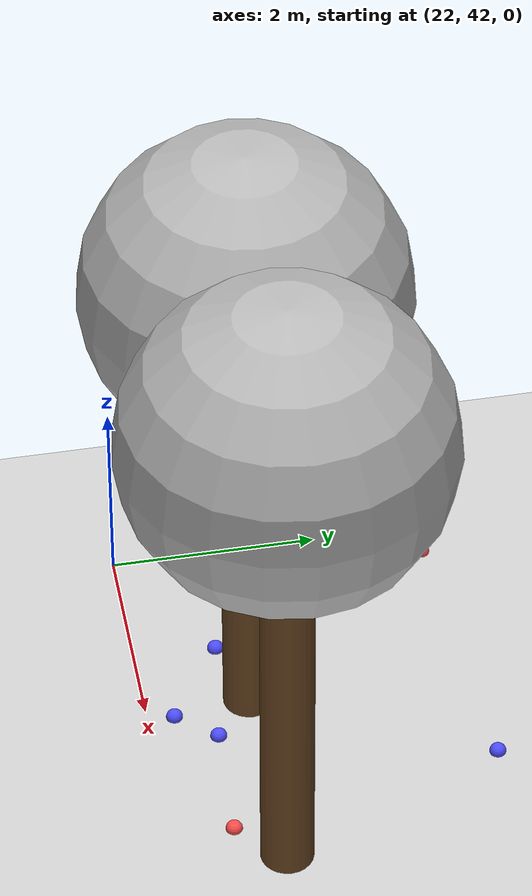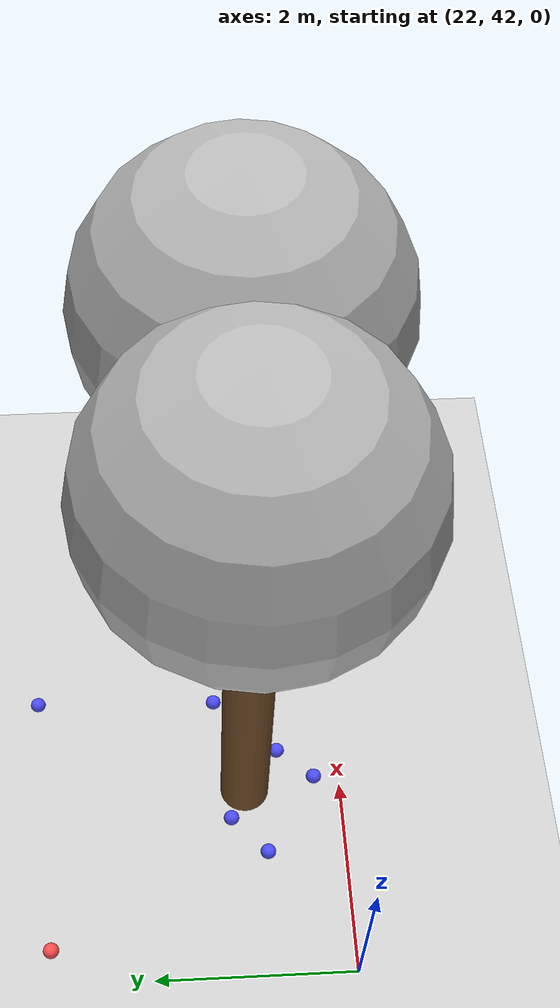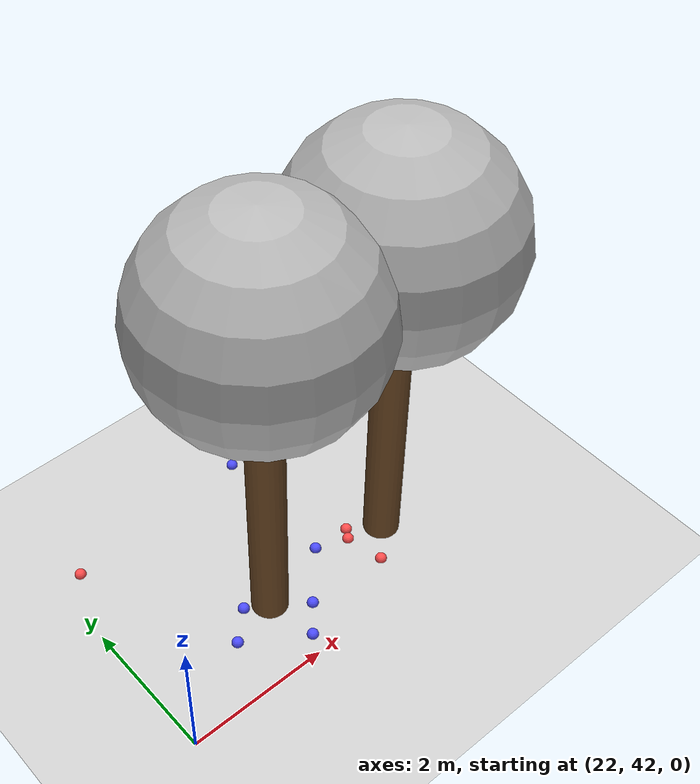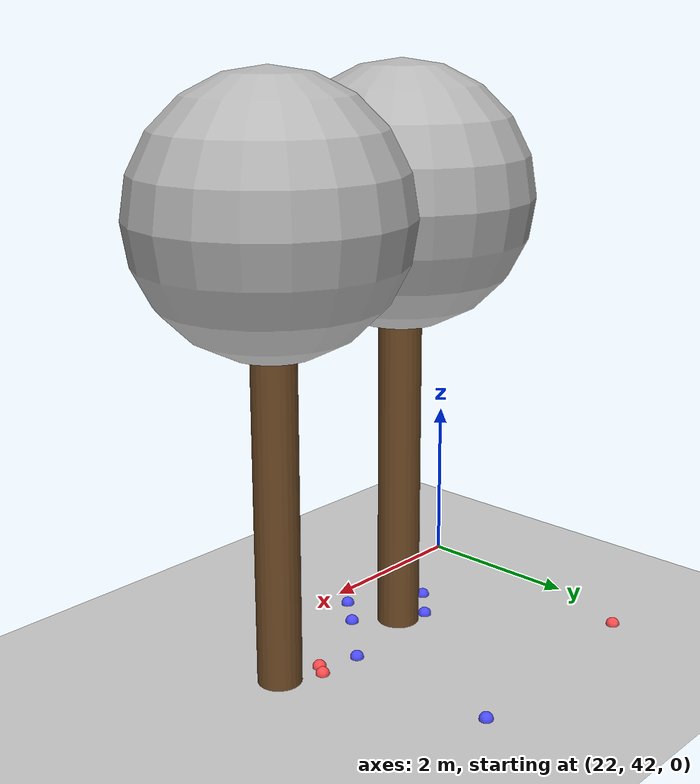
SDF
<sdf version="1.7">
 <world name="default">
  <model name="ground_plane">
   <static>1</static>
   <link name="link">
    <collision name="collision">
     <geometry><plane><normal>0 0 1</normal><size>100 100</size></plane></geometry>
     <surface>
      <contact><collide_bitmask>65535</collide_bitmask></contact>
      <friction><ode><mu>100</mu><mu2>50</mu2></ode></friction>
     </surface>
    </collision>
    <visual name="visual">
     <cast_shadows>0</cast_shadows>
     <geometry><plane><normal>0 0 1</normal><size>100 100</size></plane></geometry>
     <material>
      <script><uri>file://media/materials/scripts/gazebo.material</uri><name>Gazebo/Grey</name></script>
     </material>
    </visual>
   </link>
  </model>
  <model name="tree_simple_11">
   <static>1</static>
   <link name="link">
    <pose>0 0 0.1 0 -0 0</pose>
    <inertial>
     <mass>666</mass>
     <inertia>
      <ixx>0.0861167</ixx>
      <ixy>0</ixy>
      <ixz>0</ixz>
      <iyy>0.0861167</iyy>
      <iyz>0</iyz>
      <izz>0.0861167</izz>
     </inertia>
    </inertial>
    <collision name="collision_trunk">
     <pose>0 0 2 0 -0 0</pose>
     <geometry><cylinder><radius>0.25</radius><length>4</length></cylinder></geometry>
     <surface>
      <contact>
       <poissons_ratio>0.347</poissons_ratio>
       <elastic_modulus>8.8e+09</elastic_modulus>
       <ode><kp>100000</kp><kd>100</kd><max_vel>100</max_vel><min_depth>0.001</min_depth></ode>
      </contact>
      <friction>
       <torsional>
        <coefficient>1</coefficient>
        <use_patch_radius>0</use_patch_radius>
        <surface_radius>0.01</surface_radius>
       </torsional>
      </friction>
     </surface>
    </collision>
    <collision name="collision_treetop">
     <pose>0 0 5.2 0 -0 0</pose>
     <geometry><sphere><radius>1.5</radius></sphere></geometry>
     <surface>
      <contact>
       <poissons_ratio>0.347</poissons_ratio>
       <elastic_modulus>8.8e+09</elastic_modulus>
       <ode><kp>100000</kp><kd>100</kd><max_vel>100</max_vel><min_depth>0.001</min_depth></ode>
      </contact>
      <friction>
       <torsional>
        <coefficient>1</coefficient>
        <use_patch_radius>0</use_patch_radius>
        <surface_radius>0.01</surface_radius>
       </torsional>
      </friction>
     </surface>
    </collision>
    <visual name="trunk">
     <pose>0 0 2 0 -0 0</pose>
     <geometry><cylinder><radius>0.25</radius><length>4</length></cylinder></geometry>
     <material>
      <script>
       <uri>model://tree_simple/scripts</uri>
       <uri>model://tree_simple/materials/textures</uri>
       <name>TreeSimple/Trunk</name>
      </script>
     </material>
    </visual>
    <visual name="treetop">
     <pose>0 0 5.2 0 -0 0</pose>
     <geometry><sphere><radius>1.5</radius></sphere></geometry>
     <material>
      <script>
       <uri>model://tree_simple/scripts</uri>
       <uri>model://tree_simple/materials/textures</uri>
       <name>TreeSimple/Treetop</name>
      </script>
     </material>
    </visual>
   </link>
   <pose>24 43 -0.1 0 -0 0</pose>
  </model>
  <model name="tree_simple_12">
   <static>1</static>
   <link name="link">
    <pose>0 0 0.1 0 -0 0</pose>
    <inertial>
     <mass>666</mass>
     <inertia>
      <ixx>0.0861167</ixx>
      <ixy>0</ixy>
      <ixz>0</ixz>
      <iyy>0.0861167</iyy>
      <iyz>0</iyz>
      <izz>0.0861167</izz>
     </inertia>
    </inertial>
    <collision name="collision_trunk">
     <pose>0 0 2 0 -0 0</pose>
     <geometry><cylinder><radius>0.25</radius><length>4</length></cylinder></geometry>
     <surface>
      <contact>
       <poissons_ratio>0.347</poissons_ratio>
       <elastic_modulus>8.8e+09</elastic_modulus>
       <ode><kp>100000</kp><kd>100</kd><max_vel>100</max_vel><min_depth>0.001</min_depth></ode>
      </contact>
      <friction>
       <torsional>
        <coefficient>1</coefficient>
        <use_patch_radius>0</use_patch_radius>
        <surface_radius>0.01</surface_radius>
       </torsional>
      </friction>
     </surface>
    </collision>
    <collision name="collision_treetop">
     <pose>0 0 5.2 0 -0 0</pose>
     <geometry><sphere><radius>1.5</radius></sphere></geometry>
     <surface>
      <contact>
       <poissons_ratio>0.347</poissons_ratio>
       <elastic_modulus>8.8e+09</elastic_modulus>
       <ode><kp>100000</kp><kd>100</kd><max_vel>100</max_vel><min_depth>0.001</min_depth></ode>
      </contact>
      <friction>
       <torsional>
        <coefficient>1</coefficient>
        <use_patch_radius>0</use_patch_radius>
        <surface_radius>0.01</surface_radius>
       </torsional>
      </friction>
     </surface>
    </collision>
    <visual name="trunk">
     <pose>0 0 2 0 -0 0</pose>
     <geometry><cylinder><radius>0.25</radius><length>4</length></cylinder></geometry>
     <material>
      <script>
       <uri>model://tree_simple/scripts</uri>
       <uri>model://tree_simple/materials/textures</uri>
       <name>TreeSimple/Trunk</name>
      </script>
     </material>
    </visual>
    <visual name="treetop">
     <pose>0 0 5.2 0 -0 0</pose>
     <geometry><sphere><radius>1.5</radius></sphere></geometry>
     <material>
      <script>
       <uri>model://tree_simple/scripts</uri>
       <uri>model://tree_simple/materials/textures</uri>
       <name>TreeSimple/Treetop</name>
      </script>
     </material>
    </visual>
   </link>
   <pose>26 43 -0.1 0 -0 0</pose>
  </model>
  <model name="seed_red_29">
   <link name="link">
    <inertial>
     <mass>1</mass>
     <inertia><ixx>0.1</ixx><ixy>0</ixy><ixz>0</ixz><iyy>0.1</iyy><iyz>0</iyz><izz>0.1</izz></inertia>
    </inertial>
    <visual name="visual">
     <geometry><sphere><radius>0.08</radius></sphere></geometry>
     <material>
      <script><name>Gazebo/Grey</name><uri>file://media/materials/scripts/gazebo.material</uri></script>
      <shader type="pixel"><normal_map>__default__</normal_map></shader>
      <ambient>1 0.3 0.3 1</ambient>
      <diffuse>0.7 0.7 0.7 1</diffuse>
      <specular>0.01 0.01 0.01 1</specular>
      <emissive>0 0 0 1</emissive>
     </material>
    </visual>
    <collision name="collision">
     <geometry><sphere><radius>0.0005</radius></sphere></geometry>
     <surface>
      <friction>
       <ode><mu>1</mu><mu2>1</mu2><fdir1>0 0 0</fdir1><slip1>0</slip1><slip2>0</slip2></ode>
       <torsional>
        <coefficient>1</coefficient>
        <patch_radius>0</patch_radius>
        <surface_radius>0</surface_radius>
        <use_patch_radius>1</use_patch_radius>
        <ode><slip>0</slip></ode>
       </torsional>
      </friction>
      <bounce><restitution_coefficient>0</restitution_coefficient><threshold>1e+06</threshold></bounce>
      <contact>
       <collide_without_contact>0</collide_without_contact>
       <collide_without_contact_bitmask>1</collide_without_contact_bitmask>
       <collide_bitmask>1</collide_bitmask>
       <ode>
        <soft_cfm>0</soft_cfm>
        <soft_erp>0.2</soft_erp>
        <kp>1e+13</kp>
        <kd>1</kd>
        <max_vel>0.01</max_vel>
        <min_depth>0</min_depth>
       </ode>
       <bullet>
        <split_impulse>1</split_impulse>
        <split_impulse_penetration_threshold>-0.01</split_impulse_penetration_threshold>
        <soft_cfm>0</soft_cfm>
        <soft_erp>0.2</soft_erp>
        <kp>1e+13</kp>
        <kd>1</kd>
       </bullet>
      </contact>
     </surface>
    </collision>
   </link>
   <static>0</static>
   <pose>22.3503 45.0136 0.0005 0 -0 0</pose>
  </model>
  <model name="seed_blue_13">
   <link name="link">
    <inertial>
     <mass>1</mass>
     <inertia><ixx>0.1</ixx><ixy>0</ixy><ixz>0</ixz><iyy>0.1</iyy><iyz>0</iyz><izz>0.1</izz></inertia>
    </inertial>
    <visual name="visual">
     <geometry><sphere><radius>0.08</radius></sphere></geometry>
     <material>
      <script><name>Gazebo/Grey</name><uri>file://media/materials/scripts/gazebo.material</uri></script>
      <shader type="pixel"><normal_map>__default__</normal_map></shader>
      <ambient>0.3 0.3 1 1</ambient>
      <diffuse>0.7 0.7 0.7 1</diffuse>
      <specular>0.01 0.01 0.01 1</specular>
      <emissive>0 0 0 1</emissive>
     </material>
    </visual>
    <collision name="collision">
     <geometry><sphere><radius>0.0005</radius></sphere></geometry>
     <surface>
      <friction>
       <ode><mu>1</mu><mu2>1</mu2><fdir1>0 0 0</fdir1><slip1>0</slip1><slip2>0</slip2></ode>
       <torsional>
        <coefficient>1</coefficient>
        <patch_radius>0</patch_radius>
        <surface_radius>0</surface_radius>
        <use_patch_radius>1</use_patch_radius>
        <ode><slip>0</slip></ode>
       </torsional>
      </friction>
      <bounce><restitution_coefficient>0</restitution_coefficient><threshold>1e+06</threshold></bounce>
      <contact>
       <collide_without_contact>0</collide_without_contact>
       <collide_without_contact_bitmask>1</collide_without_contact_bitmask>
       <collide_bitmask>1</collide_bitmask>
       <ode>
        <soft_cfm>0</soft_cfm>
        <soft_erp>0.2</soft_erp>
        <kp>1e+13</kp>
        <kd>1</kd>
        <max_vel>0.01</max_vel>
        <min_depth>0</min_depth>
       </ode>
       <bullet>
        <split_impulse>1</split_impulse>
        <split_impulse_penetration_threshold>-0.01</split_impulse_penetration_threshold>
        <soft_cfm>0</soft_cfm>
        <soft_erp>0.2</soft_erp>
        <kp>1e+13</kp>
        <kd>1</kd>
       </bullet>
      </contact>
     </surface>
    </collision>
   </link>
   <static>0</static>
   <pose>25.0944 45.1856 0.0005 0 -0 0</pose>
  </model>
  <model name="seed_blue_30">
   <link name="link">
    <inertial>
     <mass>1</mass>
     <inertia><ixx>0.1</ixx><ixy>0</ixy><ixz>0</ixz><iyy>0.1</iyy><iyz>0</iyz><izz>0.1</izz></inertia>
    </inertial>
    <visual name="visual">
     <geometry><sphere><radius>0.08</radius></sphere></geometry>
     <material>
      <script><name>Gazebo/Grey</name><uri>file://media/materials/scripts/gazebo.material</uri></script>
      <shader type="pixel"><normal_map>__default__</normal_map></shader>
      <ambient>0.3 0.3 1 1</ambient>
      <diffuse>0.7 0.7 0.7 1</diffuse>
      <specular>0.01 0.01 0.01 1</specular>
      <emissive>0 0 0 1</emissive>
     </material>
    </visual>
    <collision name="collision">
     <geometry><sphere><radius>0.0005</radius></sphere></geometry>
     <surface>
      <friction>
       <ode><mu>1</mu><mu2>1</mu2><fdir1>0 0 0</fdir1><slip1>0</slip1><slip2>0</slip2></ode>
       <torsional>
        <coefficient>1</coefficient>
        <patch_radius>0</patch_radius>
        <surface_radius>0</surface_radius>
        <use_patch_radius>1</use_patch_radius>
        <ode><slip>0</slip></ode>
       </torsional>
      </friction>
      <bounce><restitution_coefficient>0</restitution_coefficient><threshold>1e+06</threshold></bounce>
      <contact>
       <collide_without_contact>0</collide_without_contact>
       <collide_without_contact_bitmask>1</collide_without_contact_bitmask>
       <collide_bitmask>1</collide_bitmask>
       <ode>
        <soft_cfm>0</soft_cfm>
        <soft_erp>0.2</soft_erp>
        <kp>1e+13</kp>
        <kd>1</kd>
        <max_vel>0.01</max_vel>
        <min_depth>0</min_depth>
       </ode>
       <bullet>
        <split_impulse>1</split_impulse>
        <split_impulse_penetration_threshold>-0.01</split_impulse_penetration_threshold>
        <soft_cfm>0</soft_cfm>
        <soft_erp>0.2</soft_erp>
        <kp>1e+13</kp>
        <kd>1</kd>
       </bullet>
      </contact>
     </surface>
    </collision>
   </link>
   <static>0</static>
   <pose>23.2898 42.796 0.0005 0 -0 0</pose>
  </model>
  <model name="seed_blue_31">
   <link name="link">
    <inertial>
     <mass>1</mass>
     <inertia><ixx>0.1</ixx><ixy>0</ixy><ixz>0</ixz><iyy>0.1</iyy><iyz>0</iyz><izz>0.1</izz></inertia>
    </inertial>
    <visual name="visual">
     <geometry><sphere><radius>0.08</radius></sphere></geometry>
     <material>
      <script><name>Gazebo/Grey</name><uri>file://media/materials/scripts/gazebo.material</uri></script>
      <shader type="pixel"><normal_map>__default__</normal_map></shader>
      <ambient>0.3 0.3 1 1</ambient>
      <diffuse>0.7 0.7 0.7 1</diffuse>
      <specular>0.01 0.01 0.01 1</specular>
      <emissive>0 0 0 1</emissive>
     </material>
    </visual>
    <collision name="collision">
     <geometry><sphere><radius>0.0005</radius></sphere></geometry>
     <surface>
      <friction>
       <ode><mu>1</mu><mu2>1</mu2><fdir1>0 0 0</fdir1><slip1>0</slip1><slip2>0</slip2></ode>
       <torsional>
        <coefficient>1</coefficient>
        <patch_radius>0</patch_radius>
        <surface_radius>0</surface_radius>
        <use_patch_radius>1</use_patch_radius>
        <ode><slip>0</slip></ode>
       </torsional>
      </friction>
      <bounce><restitution_coefficient>0</restitution_coefficient><threshold>1e+06</threshold></bounce>
      <contact>
       <collide_without_contact>0</collide_without_contact>
       <collide_without_contact_bitmask>1</collide_without_contact_bitmask>
       <collide_bitmask>1</collide_bitmask>
       <ode>
        <soft_cfm>0</soft_cfm>
        <soft_erp>0.2</soft_erp>
        <kp>1e+13</kp>
        <kd>1</kd>
        <max_vel>0.01</max_vel>
        <min_depth>0</min_depth>
       </ode>
       <bullet>
        <split_impulse>1</split_impulse>
        <split_impulse_penetration_threshold>-0.01</split_impulse_penetration_threshold>
        <soft_cfm>0</soft_cfm>
        <soft_erp>0.2</soft_erp>
        <kp>1e+13</kp>
        <kd>1</kd>
       </bullet>
      </contact>
     </surface>
    </collision>
   </link>
   <static>0</static>
   <pose>24.4297 42.6311 0.0005 0 -0 0</pose>
  </model>
  <model name="seed_blue_32">
   <link name="link">
    <inertial>
     <mass>1</mass>
     <inertia><ixx>0.1</ixx><ixy>0</ixy><ixz>0</ixz><iyy>0.1</iyy><iyz>0</iyz><izz>0.1</izz></inertia>
    </inertial>
    <visual name="visual">
     <geometry><sphere><radius>0.08</radius></sphere></geometry>
     <material>
      <script><name>Gazebo/Grey</name><uri>file://media/materials/scripts/gazebo.material</uri></script>
      <shader type="pixel"><normal_map>__default__</normal_map></shader>
      <ambient>0.3 0.3 1 1</ambient>
      <diffuse>0.7 0.7 0.7 1</diffuse>
      <specular>0.01 0.01 0.01 1</specular>
      <emissive>0 0 0 1</emissive>
     </material>
    </visual>
    <collision name="collision">
     <geometry><sphere><radius>0.0005</radius></sphere></geometry>
     <surface>
      <friction>
       <ode><mu>1</mu><mu2>1</mu2><fdir1>0 0 0</fdir1><slip1>0</slip1><slip2>0</slip2></ode>
       <torsional>
        <coefficient>1</coefficient>
        <patch_radius>0</patch_radius>
        <surface_radius>0</surface_radius>
        <use_patch_radius>1</use_patch_radius>
        <ode><slip>0</slip></ode>
       </torsional>
      </friction>
      <bounce><restitution_coefficient>0</restitution_coefficient><threshold>1e+06</threshold></bounce>
      <contact>
       <collide_without_contact>0</collide_without_contact>
       <collide_without_contact_bitmask>1</collide_without_contact_bitmask>
       <collide_bitmask>1</collide_bitmask>
       <ode>
        <soft_cfm>0</soft_cfm>
        <soft_erp>0.2</soft_erp>
        <kp>1e+13</kp>
        <kd>1</kd>
        <max_vel>0.01</max_vel>
        <min_depth>0</min_depth>
       </ode>
       <bullet>
        <split_impulse>1</split_impulse>
        <split_impulse_penetration_threshold>-0.01</split_impulse_penetration_threshold>
        <soft_cfm>0</soft_cfm>
        <soft_erp>0.2</soft_erp>
        <kp>1e+13</kp>
        <kd>1</kd>
       </bullet>
      </contact>
     </surface>
    </collision>
   </link>
   <static>0</static>
   <pose>25.0393 43.2781 0.0005 0 -0 0</pose>
  </model>
  <model name="seed_blue_33">
   <link name="link">
    <inertial>
     <mass>1</mass>
     <inertia><ixx>0.1</ixx><ixy>0</ixy><ixz>0</ixz><iyy>0.1</iyy><iyz>0</iyz><izz>0.1</izz></inertia>
    </inertial>
    <visual name="visual">
     <geometry><sphere><radius>0.08</radius></sphere></geometry>
     <material>
      <script><name>Gazebo/Grey</name><uri>file://media/materials/scripts/gazebo.material</uri></script>
      <shader type="pixel"><normal_map>__default__</normal_map></shader>
      <ambient>0.3 0.3 1 1</ambient>
      <diffuse>0.7 0.7 0.7 1</diffuse>
      <specular>0.01 0.01 0.01 1</specular>
      <emissive>0 0 0 1</emissive>
     </material>
    </visual>
    <collision name="collision">
     <geometry><sphere><radius>0.0005</radius></sphere></geometry>
     <surface>
      <friction>
       <ode><mu>1</mu><mu2>1</mu2><fdir1>0 0 0</fdir1><slip1>0</slip1><slip2>0</slip2></ode>
       <torsional>
        <coefficient>1</coefficient>
        <patch_radius>0</patch_radius>
        <surface_radius>0</surface_radius>
        <use_patch_radius>1</use_patch_radius>
        <ode><slip>0</slip></ode>
       </torsional>
      </friction>
      <bounce><restitution_coefficient>0</restitution_coefficient><threshold>1e+06</threshold></bounce>
      <contact>
       <collide_without_contact>0</collide_without_contact>
       <collide_without_contact_bitmask>1</collide_without_contact_bitmask>
       <collide_bitmask>1</collide_bitmask>
       <ode>
        <soft_cfm>0</soft_cfm>
        <soft_erp>0.2</soft_erp>
        <kp>1e+13</kp>
        <kd>1</kd>
        <max_vel>0.01</max_vel>
        <min_depth>0</min_depth>
       </ode>
       <bullet>
        <split_impulse>1</split_impulse>
        <split_impulse_penetration_threshold>-0.01</split_impulse_penetration_threshold>
        <soft_cfm>0</soft_cfm>
        <soft_erp>0.2</soft_erp>
        <kp>1e+13</kp>
        <kd>1</kd>
       </bullet>
      </contact>
     </surface>
    </collision>
   </link>
   <static>0</static>
   <pose>24.111 42.2599 0.0005 0 -0 0</pose>
  </model>
  <model name="seed_blue_34">
   <link name="link">
    <inertial>
     <mass>1</mass>
     <inertia><ixx>0.1</ixx><ixy>0</ixy><ixz>0</ixz><iyy>0.1</iyy><iyz>0</iyz><izz>0.1</izz></inertia>
    </inertial>
    <visual name="visual">
     <geometry><sphere><radius>0.08</radius></sphere></geometry>
     <material>
      <script><name>Gazebo/Grey</name><uri>file://media/materials/scripts/gazebo.material</uri></script>
      <shader type="pixel"><normal_map>__default__</normal_map></shader>
      <ambient>0.3 0.3 1 1</ambient>
      <diffuse>0.7 0.7 0.7 1</diffuse>
      <specular>0.01 0.01 0.01 1</specular>
      <emissive>0 0 0 1</emissive>
     </material>
    </visual>
    <collision name="collision">
     <geometry><sphere><radius>0.0005</radius></sphere></geometry>
     <surface>
      <friction>
       <ode><mu>1</mu><mu2>1</mu2><fdir1>0 0 0</fdir1><slip1>0</slip1><slip2>0</slip2></ode>
       <torsional>
        <coefficient>1</coefficient>
        <patch_radius>0</patch_radius>
        <surface_radius>0</surface_radius>
        <use_patch_radius>1</use_patch_radius>
        <ode><slip>0</slip></ode>
       </torsional>
      </friction>
      <bounce><restitution_coefficient>0</restitution_coefficient><threshold>1e+06</threshold></bounce>
      <contact>
       <collide_without_contact>0</collide_without_contact>
       <collide_without_contact_bitmask>1</collide_without_contact_bitmask>
       <collide_bitmask>1</collide_bitmask>
       <ode>
        <soft_cfm>0</soft_cfm>
        <soft_erp>0.2</soft_erp>
        <kp>1e+13</kp>
        <kd>1</kd>
        <max_vel>0.01</max_vel>
        <min_depth>0</min_depth>
       </ode>
       <bullet>
        <split_impulse>1</split_impulse>
        <split_impulse_penetration_threshold>-0.01</split_impulse_penetration_threshold>
        <soft_cfm>0</soft_cfm>
        <soft_erp>0.2</soft_erp>
        <kp>1e+13</kp>
        <kd>1</kd>
       </bullet>
      </contact>
     </surface>
    </collision>
   </link>
   <static>0</static>
   <pose>23.6772 43.1529 0.0005 0 -0 0</pose>
  </model>
  <model name="seed_red_48">
   <link name="link">
    <inertial>
     <mass>1</mass>
     <inertia><ixx>0.1</ixx><ixy>0</ixy><ixz>0</ixz><iyy>0.1</iyy><iyz>0</iyz><izz>0.1</izz></inertia>
    </inertial>
    <visual name="visual">
     <geometry><sphere><radius>0.08</radius></sphere></geometry>
     <material>
      <script><name>Gazebo/Grey</name><uri>file://media/materials/scripts/gazebo.material</uri></script>
      <shader type="pixel"><normal_map>__default__</normal_map></shader>
      <ambient>1 0.3 0.3 1</ambient>
      <diffuse>0.7 0.7 0.7 1</diffuse>
      <specular>0.01 0.01 0.01 1</specular>
      <emissive>0 0 0 1</emissive>
     </material>
    </visual>
    <collision name="collision">
     <geometry><sphere><radius>0.0005</radius></sphere></geometry>
     <surface>
      <friction>
       <ode><mu>1</mu><mu2>1</mu2><fdir1>0 0 0</fdir1><slip1>0</slip1><slip2>0</slip2></ode>
       <torsional>
        <coefficient>1</coefficient>
        <patch_radius>0</patch_radius>
        <surface_radius>0</surface_radius>
        <use_patch_radius>1</use_patch_radius>
        <ode><slip>0</slip></ode>
       </torsional>
      </friction>
      <bounce><restitution_coefficient>0</restitution_coefficient><threshold>1e+06</threshold></bounce>
      <contact>
       <collide_without_contact>0</collide_without_contact>
       <collide_without_contact_bitmask>1</collide_without_contact_bitmask>
       <collide_bitmask>1</collide_bitmask>
       <ode>
        <soft_cfm>0</soft_cfm>
        <soft_erp>0.2</soft_erp>
        <kp>1e+13</kp>
        <kd>1</kd>
        <max_vel>0.01</max_vel>
        <min_depth>0</min_depth>
       </ode>
       <bullet>
        <split_impulse>1</split_impulse>
        <split_impulse_penetration_threshold>-0.01</split_impulse_penetration_threshold>
        <soft_cfm>0</soft_cfm>
        <soft_erp>0.2</soft_erp>
        <kp>1e+13</kp>
        <kd>1</kd>
       </bullet>
      </contact>
     </surface>
    </collision>
   </link>
   <static>0</static>
   <pose>25.5773 43.2511 0.0005 0 -0 0</pose>
  </model>
  <model name="seed_red_49">
   <link name="link">
    <inertial>
     <mass>1</mass>
     <inertia><ixx>0.1</ixx><ixy>0</ixy><ixz>0</ixz><iyy>0.1</iyy><iyz>0</iyz><izz>0.1</izz></inertia>
    </inertial>
    <visual name="visual">
     <geometry><sphere><radius>0.08</radius></sphere></geometry>
     <material>
      <script><name>Gazebo/Grey</name><uri>file://media/materials/scripts/gazebo.material</uri></script>
      <shader type="pixel"><normal_map>__default__</normal_map></shader>
      <ambient>1 0.3 0.3 1</ambient>
      <diffuse>0.7 0.7 0.7 1</diffuse>
      <specular>0.01 0.01 0.01 1</specular>
      <emissive>0 0 0 1</emissive>
     </material>
    </visual>
    <collision name="collision">
     <geometry><sphere><radius>0.0005</radius></sphere></geometry>
     <surface>
      <friction>
       <ode><mu>1</mu><mu2>1</mu2><fdir1>0 0 0</fdir1><slip1>0</slip1><slip2>0</slip2></ode>
       <torsional>
        <coefficient>1</coefficient>
        <patch_radius>0</patch_radius>
        <surface_radius>0</surface_radius>
        <use_patch_radius>1</use_patch_radius>
        <ode><slip>0</slip></ode>
       </torsional>
      </friction>
      <bounce><restitution_coefficient>0</restitution_coefficient><threshold>1e+06</threshold></bounce>
      <contact>
       <collide_without_contact>0</collide_without_contact>
       <collide_without_contact_bitmask>1</collide_without_contact_bitmask>
       <collide_bitmask>1</collide_bitmask>
       <ode>
        <soft_cfm>0</soft_cfm>
        <soft_erp>0.2</soft_erp>
        <kp>1e+13</kp>
        <kd>1</kd>
        <max_vel>0.01</max_vel>
        <min_depth>0</min_depth>
       </ode>
       <bullet>
        <split_impulse>1</split_impulse>
        <split_impulse_penetration_threshold>-0.01</split_impulse_penetration_threshold>
        <soft_cfm>0</soft_cfm>
        <soft_erp>0.2</soft_erp>
        <kp>1e+13</kp>
        <kd>1</kd>
       </bullet>
      </contact>
     </surface>
    </collision>
   </link>
   <static>0</static>
   <pose>25.4889 43.1137 0.0005 0 -0 0</pose>
  </model>
  <model name="seed_red_50">
   <link name="link">
    <inertial>
     <mass>1</mass>
     <inertia><ixx>0.1</ixx><ixy>0</ixy><ixz>0</ixz><iyy>0.1</iyy><iyz>0</iyz><izz>0.1</izz></inertia>
    </inertial>
    <visual name="visual">
     <geometry><sphere><radius>0.08</radius></sphere></geometry>
     <material>
      <script><name>Gazebo/Grey</name><uri>file://media/materials/scripts/gazebo.material</uri></script>
      <shader type="pixel"><normal_map>__default__</normal_map></shader>
      <ambient>1 0.3 0.3 1</ambient>
      <diffuse>0.7 0.7 0.7 1</diffuse>
      <specular>0.01 0.01 0.01 1</specular>
      <emissive>0 0 0 1</emissive>
     </material>
    </visual>
    <collision name="collision">
     <geometry><sphere><radius>0.0005</radius></sphere></geometry>
     <surface>
      <friction>
       <ode><mu>1</mu><mu2>1</mu2><fdir1>0 0 0</fdir1><slip1>0</slip1><slip2>0</slip2></ode>
       <torsional>
        <coefficient>1</coefficient>
        <patch_radius>0</patch_radius>
        <surface_radius>0</surface_radius>
        <use_patch_radius>1</use_patch_radius>
        <ode><slip>0</slip></ode>
       </torsional>
      </friction>
      <bounce><restitution_coefficient>0</restitution_coefficient><threshold>1e+06</threshold></bounce>
      <contact>
       <collide_without_contact>0</collide_without_contact>
       <collide_without_contact_bitmask>1</collide_without_contact_bitmask>
       <collide_bitmask>1</collide_bitmask>
       <ode>
        <soft_cfm>0</soft_cfm>
        <soft_erp>0.2</soft_erp>
        <kp>1e+13</kp>
        <kd>1</kd>
        <max_vel>0.01</max_vel>
        <min_depth>0</min_depth>
       </ode>
       <bullet>
        <split_impulse>1</split_impulse>
        <split_impulse_penetration_threshold>-0.01</split_impulse_penetration_threshold>
        <soft_cfm>0</soft_cfm>
        <soft_erp>0.2</soft_erp>
        <kp>1e+13</kp>
        <kd>1</kd>
       </bullet>
      </contact>
     </surface>
    </collision>
   </link>
   <static>0</static>
   <pose>25.6058 42.5731 0.0005 0 -0 0</pose>
  </model>
 </world>
</sdf>
